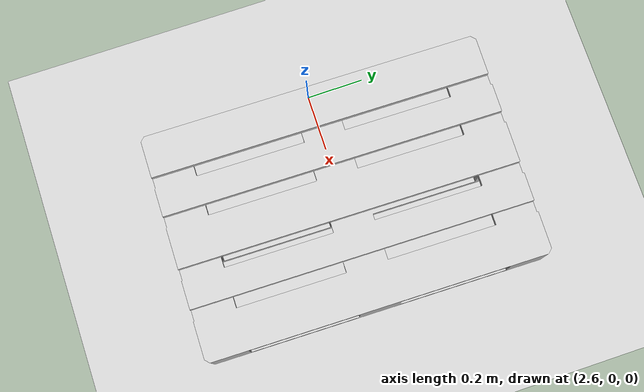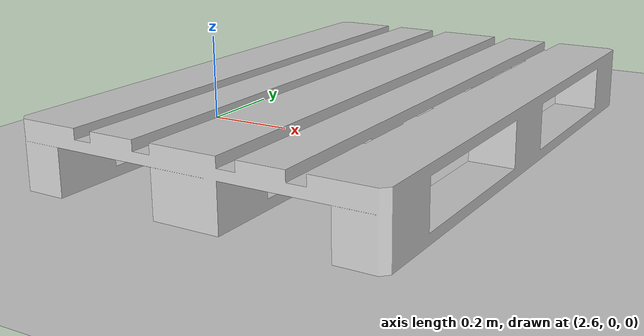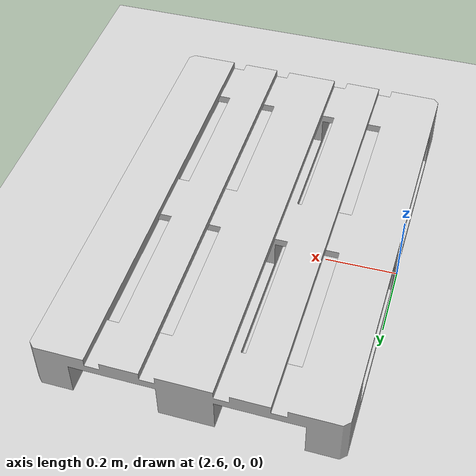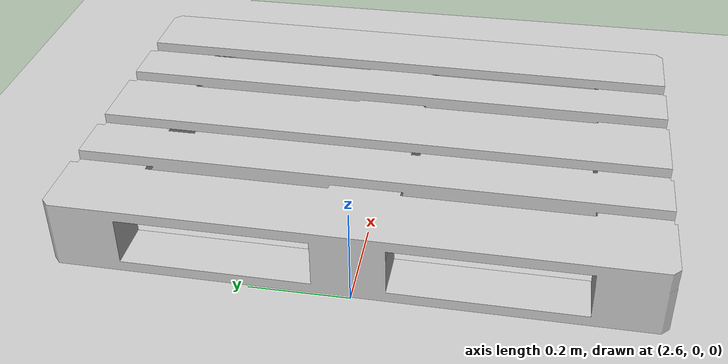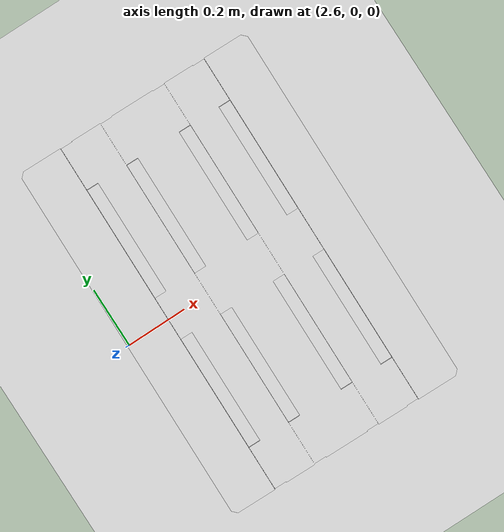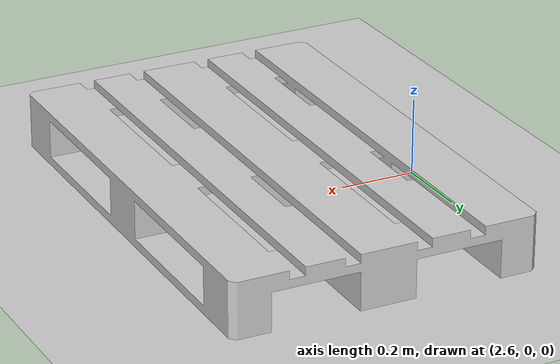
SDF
<sdf version="1.6">
 <world name="default">
  <light name="sun" type="directional">
   <pose>0 0 10 0 -0 0</pose>
   <diffuse>0.8 0.8 0.8 1</diffuse>
   <specular>0.1 0.1 0.1 1</specular>
   <attenuation>
    <range>1000</range>
    <constant>0.9</constant>
    <linear>0.01</linear>
    <quadratic>0.001</quadratic>
   </attenuation>
   <direction>-0.5 0.5 -1</direction>
  </light>
  <model name="ground_plane">
   <static>1</static>
   <link name="link">
    <collision name="collision">
     <geometry><plane><normal>0 0 1</normal><size>100 100</size></plane></geometry>
     <surface><friction><ode><mu>100</mu><mu2>50</mu2></ode></friction></surface>
    </collision>
    <visual name="visual">
     <cast_shadows>0</cast_shadows>
     <geometry><plane><normal>0 0 1</normal><size>100 100</size></plane></geometry>
     <material>
      <script><uri>file://media/materials/scripts/gazebo.material</uri><name>Gazebo/Grey</name></script>
     </material>
    </visual>
   </link>
  </model>
  <gravity>0 0 -9.8</gravity>
  <magnetic_field>6e-06 2.3e-05 -4.2e-05</magnetic_field>
  <atmosphere type="adiabatic"/>
  <physics name="default_physics" default="0" type="ode">
   <max_step_size>0.001</max_step_size>
   <real_time_factor>1</real_time_factor>
   <real_time_update_rate>1000</real_time_update_rate>
  </physics>
  <scene><ambient>0.4 0.4 0.4 1</ambient><background>0.7 0.7 0.7 1</background><shadows>1</shadows></scene>
  <spherical_coordinates>
   <surface_model>EARTH_WGS84</surface_model>
   <latitude_deg>0</latitude_deg>
   <longitude_deg>0</longitude_deg>
   <elevation>0</elevation>
   <heading_deg>0</heading_deg>
  </spherical_coordinates>
  <model name="euro_pallet_0">
   <model name="euro_pallet">
    <link name="link">
     <inertial>
      <mass>20</mass>
      <inertia><ixx>2.43</ixx><ixy>0</ixy><ixz>0</ixz><iyy>1.1</iyy><iyz>0</iyz><izz>3.47</izz></inertia>
     </inertial>
     <collision name="collision">
      <pose>0 0 0.05 0 -0 0</pose>
      <geometry><mesh><uri>model://euro_pallet/meshes/pallet.dae</uri><scale>0.1 0.1 0.1</scale></mesh></geometry>
     </collision>
     <visual name="visual">
      <pose>0 0 0.05 0 -0 0</pose>
      <geometry><mesh><uri>model://euro_pallet/meshes/pallet.dae</uri><scale>0.1 0.1 0.1</scale></mesh></geometry>
     </visual>
    </link>
    <pose>-0.337095 6.2603 3e-06 0 -0 0</pose>
   </model>
   <static>0</static>
   <pose>3.25558 -6.26415 0.071998 0 -7e-06 -0.013016</pose>
  </model>
 </world>
</sdf>
